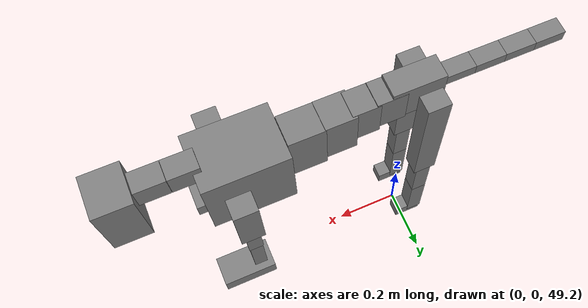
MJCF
<mujoco model="dog">

    <default>
        <joint armature="0.02" stiffness="1" damping="0.2" limited="true"/>
        <geom condim="3" friction="1 0.05 0.05" margin="0.01"/>
        <motor ctrllimited="true" ctrlrange="-1.0 1.0" forcelimited="true" gear="50"/>
    </default>

    <compiler inertiafromgeom="true" angle="radian"/>

    <option timestep="0.016" iterations="50" tolerance="1e-10" solver="Newton" jacobian="dense" cone="pyramidal"/>

    <size nconmax="20000" njmax="60000" nstack="5000000"/>
    <visual>
        <map force="0.1" zfar="30"/>
        <rgba haze="0.15 0.25 0.35 1"/>
        <quality shadowsize="2048"/>
        <global offwidth="800" offheight="800"/>
    </visual>

    <asset>
        <texture type="skybox" builtin="gradient" rgb1="0.3 0.5 0.7" rgb2="0 0 0" width="512" height="512"/>
        <texture name="texplane" type="2d" builtin="checker" rgb1=".2 .3 .4" rgb2=".1 0.15 0.2" width="512" height="512"
                 mark="cross" markrgb=".8 .8 .8"/>
        <texture name="texgeom" type="cube" builtin="flat" mark="cross" width="127" height="1278" rgb1="0.8 0.6 0.4"
                 rgb2="0.8 0.6 0.4" markrgb="1 1 1" random="0.01"/>

        <material name="matplane" reflectance="0.3" texture="texplane" texrepeat="1 1" texuniform="true"/>
        <material name="matgeom" texture="texgeom" texuniform="true" rgba="0.8 0.6 .4 1"/>
    </asset>

    <worldbody>
        <geom name="floor" pos="0 0 0" size="0 0 .25" type="plane" material="matplane" condim="3"/>

        <light directional="false" diffuse=".2 .2 .2" specular="0 0 0" pos="0 0 5" dir="0 0 -1" castshadow="false"/>
        <light mode="targetbodycom" target="torso" directional="false" diffuse=".8 .8 .8" specular="0.3 0.3 0.3"
               pos="0 0 4.0" dir="0 0 -1"/>

        <body name="root" pos="0 0 50">
            <freejoint name="root_1"/>
            <geom type="box" pos="0 0 -0.02" size="0.0774  0.0358  0.063" density="2030"/>

            <body name="spine1" pos="0.054 0 0">
                <joint name="spine1_y" axis="0 1 0" range="0 0.7" limited="true"/>
                <geom type="box" pos="0.02375 0 -0.03" size="0.04375  0.0375  0.05985" density="2030"/>

                <body name="spine2" pos="0.0612 0 0">
                    <joint name="spine2_y" axis="0 1 0" range="-0.15 0.15" limited="true"/>
                    <geom type="box" pos="0.03555  0  -0.04" size="0.04055  0.039  0.06615" density="2030"/>

                    <body name="spine3" pos="0.0730 0 0">
                        <joint name="spine3_y" axis="0 1 0" range="-0.15 0.15" limited="true"/>
                        <geom type="box" pos="0.03555  0  -0.057" size="0.04555  0.0445  0.081" density="2030"/>

                        <body name="spine4" pos="0.0780 0 0">
                            <joint name="spine4_y" axis="0 1 0" range="-0.15 0.15" limited="true"/>
                            <geom type="box" pos="0.05265  0  -0.07" size="0.05265  0.045  0.09135" density="2030"/>

                            <body name="torso" pos="0.1082 0 0">
                                <joint name="torso_y" axis="0 1 0" range="-0.15 0.15" limited="true"/>
                                <geom type="box" pos="0.11925  0  -0.085" size="0.11925  0.085  0.11745"
                                      density="2030"/>

                                <body name="neck1" pos="0.2160  0   0.0180">
                                    <joint name="neck1_y" axis="0 1 0" range="-1.2  -1" limited="true"/>
                                    <geom type="box" pos="0.0423  0  0" size="0.0423  0.03  0.036" density="2325"/>

                                    <body name="neck2" pos="0.0853  0  0">
                                        <joint name="neck2_y" axis="0 1 0" range="0.1  0" limited="true"/>
                                        <geom type="box" pos="0.0423  0  0" size="0.0423  0.03  0.036" density="2325"/>

                                        <body name="head" pos="0.0853  0  0">
                                            <joint name="head_y" axis="0 1 0" range="-0.3  -0.2" limited="true"/>
                                            <geom type="box" pos="0.0531  0  -0.055" size="0.0531  0.06  0.1044"
                                                  density="4030"/>

                                        </body>
                                    </body>
                                </body>

                                <body name="front_shoulder" pos="0.156  0   -0.0480">
                                    <joint name="front_shoulder_y" axis="0 1 0" range="-1 1.5" limited="true"/>
                                    <geom type="box" pos="0 0.13 -0.0668" size="0.0341  0.0291  0.0934" density="1158"/>
                                    <geom type="box" pos="0 -0.13 -0.0668" size="0.0341  0.0291  0.0934"
                                          density="1158"/>

                                    <body name="front_elbow" pos="0  0  -0.1336">
                                        <joint name="front_elbow_y" axis="0 1 0" range="-2 0" limited="true"/>
                                        <geom type="box" pos="0 0.13 -0.0620" size="0.0212  0.0217  0.0620"
                                              density="1081"/>
                                        <geom type="box" pos="0 -0.13 -0.0620" size="0.0212  0.0217  0.0620"
                                              density="1081"/>

                                        <body name="front_wrist" pos="0  0  -0.1239">
                                            <joint name="front_wrist_y" axis="0 1 0" range="-0.2 0" limited="true"/>
                                            <geom type="box" pos="0 0.13 -0.0802" size="0.0191  0.0213  0.0933"
                                                  density="1664"/>
                                            <geom type="box" pos="0 -0.13 -0.0802" size="0.0191  0.0213  0.0933"
                                                  density="1664"/>

                                            <body name="front_finger_end" pos="0  0  -0.1604">
                                                <joint name="front_finger_y" axis="0 1 0" range="-0.4 1"
                                                       limited="true"/>
                                                <geom type="box" pos="0.0427  0.13  -0.0120"
                                                      size="0.0784  0.0427  0.0270" density="1515"/>
                                                <geom type="box" pos="0.0427  -0.13  -0.0120"
                                                      size="0.0784  0.0427  0.0270" density="1515"/>

                                            </body>

                                        </body>
                                    </body>
                                </body>

                            </body>
                        </body>
                    </body>
                </body>
            </body>

            <body name="back_hip" pos="-0.03 0 -0.018">
                <joint name="back_hip_y" axis="0 1 0" range="-1.5 0.3" limited="true"/>
                <geom type="box" pos="0 0.07 -0.1707" size="0.0346  0.0272  0.1935" density="1154"/>
                <geom type="box" pos="0 -0.07 -0.1707" size="0.0346  0.0272  0.1935" density="1154"/>

                <body name="back_knee" pos="0  0  -0.3415">
                    <joint name="back_knee_y" axis="0 1 0" range="0 2.8" limited="true"/>
                    <geom type="box" pos="0 0.07 -0.0950" size="0.0238  0.0235  0.1105" density="1227"/>
                    <geom type="box" pos="0 -0.07 -0.0950" size="0.0238  0.0235  0.1105" density="1227"/>

                    <body name="back_ankle" pos="0  0  -0.1899">
                        <joint name="back_ankle_y" axis="0 1 0" range="-2.2 0" limited="true"/>
                        <geom type="box" pos="0 0.07 -0.0781" size="0.0239  0.0239  0.0893" density="1284"/>
                        <geom type="box" pos="0 -0.07 -0.0781" size="0.0239  0.0239  0.0893" density="1284"/>

                        <body name="back_toe_end" pos="0  0  -0.1561">
                            <joint name="back_toe_y" axis="0 1 0" range="-0.4 1" limited="true"/>
                            <geom type="box" pos="0.0231  0.07  -0.0071" size="0.0424  0.0231  0.0221" density="1515"/>
                            <geom type="box" pos="0.0231  -0.07  -0.0071" size="0.0424  0.0231  0.0221" density="1515"/>

                        </body>
                    </body>
                </body>
            </body>

            <body name="tail1" pos="-0.074 0 -0.006">
                <joint name="tail1_y" axis="0 1 0" range="-0.2 0.2" limited="true"/>
                <geom type="box" pos="-0.0536  0  0" size="0.045  0.025  0.0175" density="1587"/>

                <body name="tail2" pos="-0.09 0 0">
                    <joint name="tail2_y" axis="0 1 0" range="-0.2 0.2" limited="true"/>
                    <geom type="box" pos="-0.0536  0  0" size="0.045  0.025  0.0175" density="1587"/>

                    <body name="tail3" pos="-0.09 0 0">
                        <joint name="tail3_y" axis="0 1 0" range="-0.2 0.2" limited="true"/>
                        <geom type="box" pos="-0.0536  0  0" size="0.045  0.025  0.0175" density="1587"/>

                        <body name="tail4" pos="-0.09 0 0">
                            <joint name="tail4_y" axis="0 1 0" range="-0.2 0.2" limited="true"/>
                            <geom type="box" pos="-0.0536  0  0" size="0.045  0.025  0.0175" density="1587"/>

                        </body>
                    </body>
                </body>
            </body>
        </body>
    </worldbody>

    <actuator>
        <motor joint="spine1_y" forcerange="-150 150     "/>
        <motor joint="spine2_y" forcerange="-150 150     "/>
        <motor joint="spine3_y" forcerange="-150 150     "/>
        <motor joint="spine4_y" forcerange="-150 150     "/>
        <motor joint="torso_y" forcerange="-150 150     "/>
        <motor joint="neck1_y" forcerange="-100 100       "/>
        <motor joint="neck2_y" forcerange="-100 100       "/>
        <motor joint="head_y" forcerange="-150 150       "/>
        <motor joint="front_shoulder_y" forcerange="-133.30 160.80"/>
        <motor joint="front_elbow_y" forcerange="-136.03 121.94"/>
        <motor joint="front_wrist_y" forcerange="-114.77 55.42"/>
        <motor joint="front_finger_y" forcerange="-92.88 95.08"/>
        <motor joint="back_hip_y" forcerange="-327.19 235.06"/>
        <motor joint="back_knee_y" forcerange="-252.69 288.62"/>
        <motor joint="back_angle_y" forcerange="-102.99 178.65"/>
        <motor joint="back_toe_y" forcerange="-23.27 81.91"/>
        <motor joint="tail1_y" forcerange="-50 50     "/>
        <motor joint="tail2_y" forcerange="-50 50     "/>
        <motor joint="tail3_y" forcerange="-50 50     "/>
        <motor joint="tail4_y" forcerange="-50 50     "/>
    </actuator>
</mujoco>
